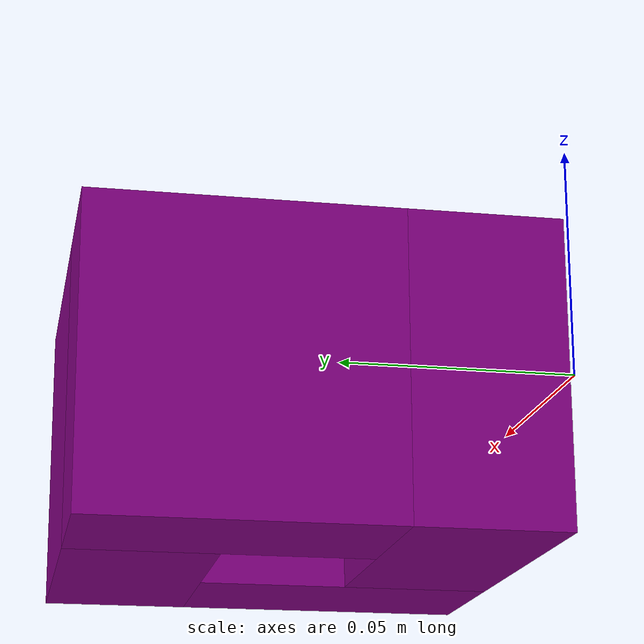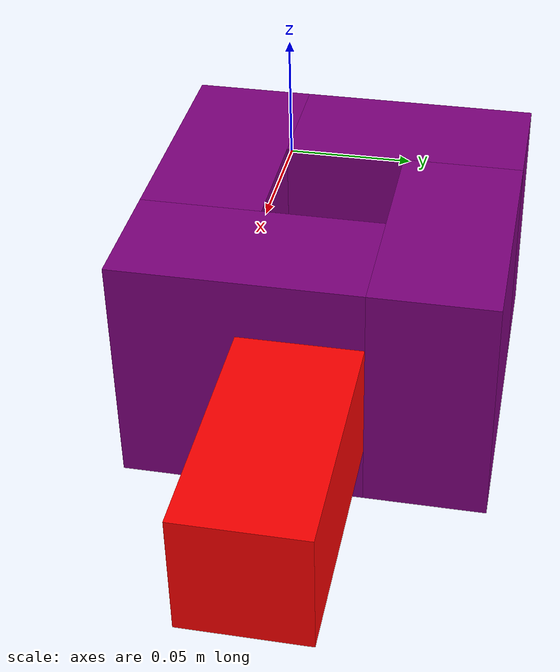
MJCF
<mujoco model="target_box">
    <worldbody>
        <body name="target_box" pos="0.0 0.0 0.0" quat="1 0 0 0">
        <geom name="handle_box" pos="0.21 0.04 0.02" size="0.05 0.02 0.02" rgba="1.0 0.0 0.0 1" friction="0.3 0.3 0.3" type="box" mass="0.01" />
        <geom name="target_box0" pos="0.1 0.0 0.02" size="0.04 0.02 0.04" rgba="0.5 0.0 0.5 1" type="box" mass="0.01" />
        <geom name="target_box1" pos="0.08 0.06 0.02" size="0.02 0.04 0.04" rgba="0.5 0.0 0.5 1" type="box" mass="0.01" />
        <geom name="target_box2" pos="0.16 0.02  0.02" size="0.02 0.04 0.04" rgba="0.5 0.0 0.5 1" type="box" mass="0.01" />
        <geom name="target_box3" pos="0.14 0.08 0.02" size="0.04 0.02 0.04" rgba="0.5 0.0 0.5 1" type="box" mass="0.01" />
        <joint name="target_box_joint" type="free"/>
        </body>
    </worldbody>
</mujoco>
